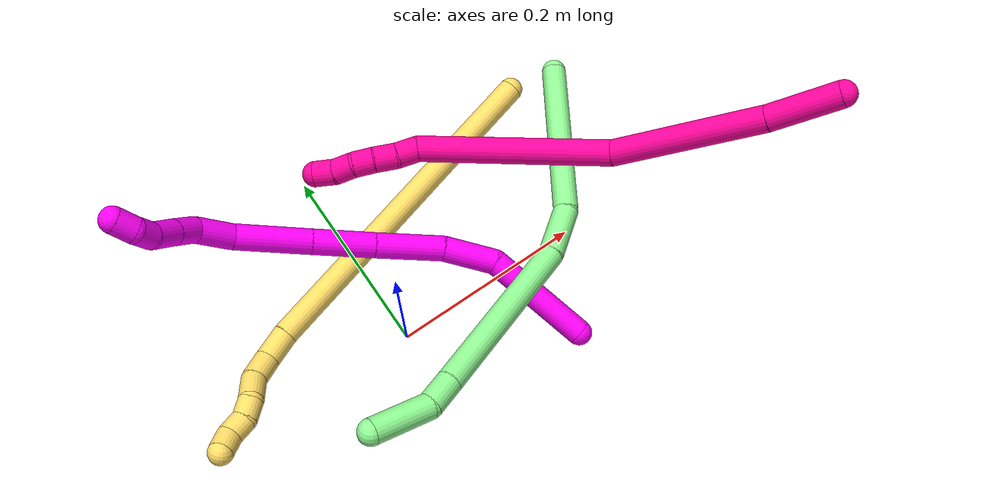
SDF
<sdf version="1.7">
 <world name="default">
  <model name="5">
   <static>0</static>
   <link name="5">
    <collision name="collision-cylinder-e_1_1_4">
     <pose>-0.120604 -0.069221 -0.108731 2.57468 -0.752177 -1.87044</pose>
     <geometry><cylinder><radius>0.0125</radius><length>0.353039</length></cylinder></geometry>
     <surface>
      <friction><ode><mu>1.16</mu><mu2>1.16</mu2><slip1>0</slip1><slip2>0</slip2></ode></friction>
      <contact><ode><kp>1e+06</kp><kd>1</kd><max_vel>0</max_vel><min_depth>0.001</min_depth></ode></contact>
     </surface>
    </collision>
    <visual name="visual-cylinder-e_1_1_4">
     <pose>-0.120604 -0.069221 -0.108731 2.57468 -0.752177 -1.87044</pose>
     <geometry><cylinder><radius>0.0125</radius><length>0.353039</length></cylinder></geometry>
     <material><ambient>1 0.858824 0.4 1</ambient></material>
    </visual>
    <collision name="collision-cylinder-e_2_4_5">
     <pose>-0.250256 -0.145871 -0.227094 2.4846 -0.639587 -1.54197</pose>
     <geometry><cylinder><radius>0.0125</radius><length>0.03032</length></cylinder></geometry>
     <surface>
      <friction><ode><mu>1.16</mu><mu2>1.16</mu2><slip1>0</slip1><slip2>0</slip2></ode></friction>
      <contact><ode><kp>1e+06</kp><kd>1</kd><max_vel>0</max_vel><min_depth>0.001</min_depth></ode></contact>
     </surface>
    </collision>
    <visual name="visual-cylinder-e_2_4_5">
     <pose>-0.250256 -0.145871 -0.227094 2.4846 -0.639587 -1.54197</pose>
     <geometry><cylinder><radius>0.0125</radius><length>0.03032</length></cylinder></geometry>
     <material><ambient>1 0.858824 0.4 1</ambient></material>
    </visual>
    <collision name="collision-cylinder-e_3_5_6">
     <pose>-0.267143 -0.16355 -0.241167 1.97974 -0.611863 -0.896844</pose>
     <geometry><cylinder><radius>0.0125</radius><length>0.027296</length></cylinder></geometry>
     <surface>
      <friction><ode><mu>1.16</mu><mu2>1.16</mu2><slip1>0</slip1><slip2>0</slip2></ode></friction>
      <contact><ode><kp>1e+06</kp><kd>1</kd><max_vel>0</max_vel><min_depth>0.001</min_depth></ode></contact>
     </surface>
    </collision>
    <visual name="visual-cylinder-e_3_5_6">
     <pose>-0.267143 -0.16355 -0.241167 1.97974 -0.611863 -0.896844</pose>
     <geometry><cylinder><radius>0.0125</radius><length>0.027296</length></cylinder></geometry>
     <material><ambient>1 0.858824 0.4 1</ambient></material>
    </visual>
    <collision name="collision-cylinder-e_4_6_7">
     <pose>-0.278303 -0.186961 -0.248413 1.78071 -0.241916 -0.298124</pose>
     <geometry><cylinder><radius>0.0125</radius><length>0.027718</length></cylinder></geometry>
     <surface>
      <friction><ode><mu>1.16</mu><mu2>1.16</mu2><slip1>0</slip1><slip2>0</slip2></ode></friction>
      <contact><ode><kp>1e+06</kp><kd>1</kd><max_vel>0</max_vel><min_depth>0.001</min_depth></ode></contact>
     </surface>
    </collision>
    <visual name="visual-cylinder-e_4_6_7">
     <pose>-0.278303 -0.186961 -0.248413 1.78071 -0.241916 -0.298124</pose>
     <geometry><cylinder><radius>0.0125</radius><length>0.027718</length></cylinder></geometry>
     <material><ambient>1 0.858824 0.4 1</ambient></material>
    </visual>
    <collision name="collision-cylinder-e_5_7_8">
     <pose>-0.285364 -0.20773 -0.256648 2.19066 -0.380727 -0.71626</pose>
     <geometry><cylinder><radius>0.0125</radius><length>0.020138</length></cylinder></geometry>
     <surface>
      <friction><ode><mu>1.16</mu><mu2>1.16</mu2><slip1>0</slip1><slip2>0</slip2></ode></friction>
      <contact><ode><kp>1e+06</kp><kd>1</kd><max_vel>0</max_vel><min_depth>0.001</min_depth></ode></contact>
     </surface>
    </collision>
    <visual name="visual-cylinder-e_5_7_8">
     <pose>-0.285364 -0.20773 -0.256648 2.19066 -0.380727 -0.71626</pose>
     <geometry><cylinder><radius>0.0125</radius><length>0.020138</length></cylinder></geometry>
     <material><ambient>1 0.858824 0.4 1</ambient></material>
    </visual>
    <collision name="collision-cylinder-e_6_8_9">
     <pose>-0.296303 -0.220865 -0.266797 2.27757 -0.780606 -1.4571</pose>
     <geometry><cylinder><radius>0.0125</radius><length>0.020455</length></cylinder></geometry>
     <surface>
      <friction><ode><mu>1.16</mu><mu2>1.16</mu2><slip1>0</slip1><slip2>0</slip2></ode></friction>
      <contact><ode><kp>1e+06</kp><kd>1</kd><max_vel>0</max_vel><min_depth>0.001</min_depth></ode></contact>
     </surface>
    </collision>
    <visual name="visual-cylinder-e_6_8_9">
     <pose>-0.296303 -0.220865 -0.266797 2.27757 -0.780606 -1.4571</pose>
     <geometry><cylinder><radius>0.0125</radius><length>0.020455</length></cylinder></geometry>
     <material><ambient>1 0.858824 0.4 1</ambient></material>
    </visual>
    <collision name="collision-cylinder-e_7_9_2">
     <pose>-0.308627 -0.235178 -0.27418 1.86524 -0.509227 -0.674941</pose>
     <geometry><cylinder><radius>0.0125</radius><length>0.021034</length></cylinder></geometry>
     <surface>
      <friction><ode><mu>1.16</mu><mu2>1.16</mu2><slip1>0</slip1><slip2>0</slip2></ode></friction>
      <contact><ode><kp>1e+06</kp><kd>1</kd><max_vel>0</max_vel><min_depth>0.001</min_depth></ode></contact>
     </surface>
    </collision>
    <visual name="visual-cylinder-e_7_9_2">
     <pose>-0.308627 -0.235178 -0.27418 1.86524 -0.509227 -0.674941</pose>
     <geometry><cylinder><radius>0.0125</radius><length>0.021034</length></cylinder></geometry>
     <material><ambient>1 0.858824 0.4 1</ambient></material>
    </visual>
    <collision name="collision-sphere-2">
     <pose>-0.313754 -0.243966 -0.276845 0 -0 0</pose>
     <geometry><sphere><radius>0.0125</radius></sphere></geometry>
     <surface>
      <friction><ode><mu>1.16</mu><mu2>1.16</mu2><slip1>0</slip1><slip2>0</slip2></ode></friction>
      <contact><ode><kp>1e+06</kp><kd>1</kd><max_vel>0</max_vel><min_depth>0.001</min_depth></ode></contact>
     </surface>
    </collision>
    <visual name="visual-sphere-2">
     <pose>-0.313754 -0.243966 -0.276845 0 -0 0</pose>
     <geometry><sphere><radius>0.0125</radius></sphere></geometry>
     <material><ambient>1 0.858824 0.4 1</ambient></material>
    </visual>
    <collision name="collision-sphere-9">
     <pose>-0.3035 -0.226391 -0.271515 0 -0 0</pose>
     <geometry><sphere><radius>0.0125</radius></sphere></geometry>
     <surface>
      <friction><ode><mu>1.16</mu><mu2>1.16</mu2><slip1>0</slip1><slip2>0</slip2></ode></friction>
      <contact><ode><kp>1e+06</kp><kd>1</kd><max_vel>0</max_vel><min_depth>0.001</min_depth></ode></contact>
     </surface>
    </collision>
    <visual name="visual-sphere-9">
     <pose>-0.3035 -0.226391 -0.271515 0 -0 0</pose>
     <geometry><sphere><radius>0.0125</radius></sphere></geometry>
     <material><ambient>1 0.858824 0.4 1</ambient></material>
    </visual>
    <collision name="collision-sphere-4">
     <pose>-0.241207 -0.138442 -0.217462 0 -0 0</pose>
     <geometry><sphere><radius>0.0125</radius></sphere></geometry>
     <surface>
      <friction><ode><mu>1.16</mu><mu2>1.16</mu2><slip1>0</slip1><slip2>0</slip2></ode></friction>
      <contact><ode><kp>1e+06</kp><kd>1</kd><max_vel>0</max_vel><min_depth>0.001</min_depth></ode></contact>
     </surface>
    </collision>
    <visual name="visual-sphere-4">
     <pose>-0.241207 -0.138442 -0.217462 0 -0 0</pose>
     <geometry><sphere><radius>0.0125</radius></sphere></geometry>
     <material><ambient>1 0.858824 0.4 1</ambient></material>
    </visual>
    <collision name="collision-sphere-1">
     <geometry><sphere><radius>0.0125</radius></sphere></geometry>
     <surface>
      <friction><ode><mu>1.16</mu><mu2>1.16</mu2><slip1>0</slip1><slip2>0</slip2></ode></friction>
      <contact><ode><kp>1e+06</kp><kd>1</kd><max_vel>0</max_vel><min_depth>0.001</min_depth></ode></contact>
     </surface>
    </collision>
    <visual name="visual-sphere-1">
     <geometry><sphere><radius>0.0125</radius></sphere></geometry>
     <material><ambient>1 0.858824 0.4 1</ambient></material>
    </visual>
    <collision name="collision-sphere-8">
     <pose>-0.289106 -0.215339 -0.262078 0 -0 0</pose>
     <geometry><sphere><radius>0.0125</radius></sphere></geometry>
     <surface>
      <friction><ode><mu>1.16</mu><mu2>1.16</mu2><slip1>0</slip1><slip2>0</slip2></ode></friction>
      <contact><ode><kp>1e+06</kp><kd>1</kd><max_vel>0</max_vel><min_depth>0.001</min_depth></ode></contact>
     </surface>
    </collision>
    <visual name="visual-sphere-8">
     <pose>-0.289106 -0.215339 -0.262078 0 -0 0</pose>
     <geometry><sphere><radius>0.0125</radius></sphere></geometry>
     <material><ambient>1 0.858824 0.4 1</ambient></material>
    </visual>
    <collision name="collision-sphere-5">
     <pose>-0.259304 -0.1533 -0.236725 0 -0 0</pose>
     <geometry><sphere><radius>0.0125</radius></sphere></geometry>
     <surface>
      <friction><ode><mu>1.16</mu><mu2>1.16</mu2><slip1>0</slip1><slip2>0</slip2></ode></friction>
      <contact><ode><kp>1e+06</kp><kd>1</kd><max_vel>0</max_vel><min_depth>0.001</min_depth></ode></contact>
     </surface>
    </collision>
    <visual name="visual-sphere-5">
     <pose>-0.259304 -0.1533 -0.236725 0 -0 0</pose>
     <geometry><sphere><radius>0.0125</radius></sphere></geometry>
     <material><ambient>1 0.858824 0.4 1</ambient></material>
    </visual>
    <collision name="collision-sphere-6">
     <pose>-0.274982 -0.173801 -0.24561 0 -0 0</pose>
     <geometry><sphere><radius>0.0125</radius></sphere></geometry>
     <surface>
      <friction><ode><mu>1.16</mu><mu2>1.16</mu2><slip1>0</slip1><slip2>0</slip2></ode></friction>
      <contact><ode><kp>1e+06</kp><kd>1</kd><max_vel>0</max_vel><min_depth>0.001</min_depth></ode></contact>
     </surface>
    </collision>
    <visual name="visual-sphere-6">
     <pose>-0.274982 -0.173801 -0.24561 0 -0 0</pose>
     <geometry><sphere><radius>0.0125</radius></sphere></geometry>
     <material><ambient>1 0.858824 0.4 1</ambient></material>
    </visual>
    <collision name="collision-sphere-7">
     <pose>-0.281623 -0.200122 -0.251217 0 -0 0</pose>
     <geometry><sphere><radius>0.0125</radius></sphere></geometry>
     <surface>
      <friction><ode><mu>1.16</mu><mu2>1.16</mu2><slip1>0</slip1><slip2>0</slip2></ode></friction>
      <contact><ode><kp>1e+06</kp><kd>1</kd><max_vel>0</max_vel><min_depth>0.001</min_depth></ode></contact>
     </surface>
    </collision>
    <visual name="visual-sphere-7">
     <pose>-0.281623 -0.200122 -0.251217 0 -0 0</pose>
     <geometry><sphere><radius>0.0125</radius></sphere></geometry>
     <material><ambient>1 0.858824 0.4 1</ambient></material>
    </visual>
    <inertial>
     <pose>-0.166941 -0.10431 -0.150266 0 -0 0</pose>
     <mass>0.5</mass>
     <inertia>
      <ixx>-0.003388</ixx>
      <ixy>0</ixy>
      <ixz>0</ixz>
      <iyy>-0.000387</iyy>
      <iyz>0</iyz>
      <izz>0.003953</izz>
     </inertia>
    </inertial>
   </link>
   <pose>0.23608 0.154565 0.037338 -0.727473 0.361771 -0.499266</pose>
  </model>
  <model name="10">
   <static>0</static>
   <link name="10">
    <collision name="collision-cylinder-e_1_1_4">
     <pose>-0.011371 0.049374 -0.018046 -1.9212 -0.213018 0.303462</pose>
     <geometry><cylinder><radius>0.0125</radius><length>0.107568</length></cylinder></geometry>
     <surface>
      <friction><ode><mu>1.16</mu><mu2>1.16</mu2><slip1>0</slip1><slip2>0</slip2></ode></friction>
      <contact><ode><kp>1e+06</kp><kd>1</kd><max_vel>0</max_vel><min_depth>0.001</min_depth></ode></contact>
     </surface>
    </collision>
    <visual name="visual-cylinder-e_1_1_4">
     <pose>-0.011371 0.049374 -0.018046 -1.9212 -0.213018 0.303462</pose>
     <geometry><cylinder><radius>0.0125</radius><length>0.107568</length></cylinder></geometry>
     <material><ambient>1 0 0.964706 1</ambient></material>
    </visual>
    <collision name="collision-cylinder-e_2_4_5">
     <pose>-0.038804 0.117267 -0.045794 -2.05343 -0.655119 1.02351</pose>
     <geometry><cylinder><radius>0.0125</radius><length>0.05273</length></cylinder></geometry>
     <surface>
      <friction><ode><mu>1.16</mu><mu2>1.16</mu2><slip1>0</slip1><slip2>0</slip2></ode></friction>
      <contact><ode><kp>1e+06</kp><kd>1</kd><max_vel>0</max_vel><min_depth>0.001</min_depth></ode></contact>
     </surface>
    </collision>
    <visual name="visual-cylinder-e_2_4_5">
     <pose>-0.038804 0.117267 -0.045794 -2.05343 -0.655119 1.02351</pose>
     <geometry><cylinder><radius>0.0125</radius><length>0.05273</length></cylinder></geometry>
     <material><ambient>1 0 0.964706 1</ambient></material>
    </visual>
    <collision name="collision-cylinder-e_3_5_6">
     <pose>-0.0808 0.154538 -0.065947 -2.0792 -0.879333 1.35022</pose>
     <geometry><cylinder><radius>0.0125</radius><length>0.067331</length></cylinder></geometry>
     <surface>
      <friction><ode><mu>1.16</mu><mu2>1.16</mu2><slip1>0</slip1><slip2>0</slip2></ode></friction>
      <contact><ode><kp>1e+06</kp><kd>1</kd><max_vel>0</max_vel><min_depth>0.001</min_depth></ode></contact>
     </surface>
    </collision>
    <visual name="visual-cylinder-e_3_5_6">
     <pose>-0.0808 0.154538 -0.065947 -2.0792 -0.879333 1.35022</pose>
     <geometry><cylinder><radius>0.0125</radius><length>0.067331</length></cylinder></geometry>
     <material><ambient>1 0 0.964706 1</ambient></material>
    </visual>
    <collision name="collision-cylinder-e_4_6_7">
     <pose>-0.130081 0.190473 -0.085504 -2.05816 -0.876304 1.32309</pose>
     <geometry><cylinder><radius>0.0125</radius><length>0.060773</length></cylinder></geometry>
     <surface>
      <friction><ode><mu>1.16</mu><mu2>1.16</mu2><slip1>0</slip1><slip2>0</slip2></ode></friction>
      <contact><ode><kp>1e+06</kp><kd>1</kd><max_vel>0</max_vel><min_depth>0.001</min_depth></ode></contact>
     </surface>
    </collision>
    <visual name="visual-cylinder-e_4_6_7">
     <pose>-0.130081 0.190473 -0.085504 -2.05816 -0.876304 1.32309</pose>
     <geometry><cylinder><radius>0.0125</radius><length>0.060773</length></cylinder></geometry>
     <material><ambient>1 0 0.964706 1</ambient></material>
    </visual>
    <collision name="collision-cylinder-e_5_7_8">
     <pose>-0.182273 0.228946 -0.104001 -1.98614 -0.891971 1.26557</pose>
     <geometry><cylinder><radius>0.0125</radius><length>0.074119</length></cylinder></geometry>
     <surface>
      <friction><ode><mu>1.16</mu><mu2>1.16</mu2><slip1>0</slip1><slip2>0</slip2></ode></friction>
      <contact><ode><kp>1e+06</kp><kd>1</kd><max_vel>0</max_vel><min_depth>0.001</min_depth></ode></contact>
     </surface>
    </collision>
    <visual name="visual-cylinder-e_5_7_8">
     <pose>-0.182273 0.228946 -0.104001 -1.98614 -0.891971 1.26557</pose>
     <geometry><cylinder><radius>0.0125</radius><length>0.074119</length></cylinder></geometry>
     <material><ambient>1 0 0.964706 1</ambient></material>
    </visual>
    <collision name="collision-cylinder-e_6_8_9">
     <pose>-0.225583 0.262695 -0.111889 -1.45094 -0.856266 0.769099</pose>
     <geometry><cylinder><radius>0.0125</radius><length>0.0383</length></cylinder></geometry>
     <surface>
      <friction><ode><mu>1.16</mu><mu2>1.16</mu2><slip1>0</slip1><slip2>0</slip2></ode></friction>
      <contact><ode><kp>1e+06</kp><kd>1</kd><max_vel>0</max_vel><min_depth>0.001</min_depth></ode></contact>
     </surface>
    </collision>
    <visual name="visual-cylinder-e_6_8_9">
     <pose>-0.225583 0.262695 -0.111889 -1.45094 -0.856266 0.769099</pose>
     <geometry><cylinder><radius>0.0125</radius><length>0.0383</length></cylinder></geometry>
     <material><ambient>1 0 0.964706 1</ambient></material>
    </visual>
    <collision name="collision-cylinder-e_7_9_10">
     <pose>-0.25147 0.279936 -0.103495 -0.606513 -0.937182 0.314175</pose>
     <geometry><cylinder><radius>0.0125</radius><length>0.028342</length></cylinder></geometry>
     <surface>
      <friction><ode><mu>1.16</mu><mu2>1.16</mu2><slip1>0</slip1><slip2>0</slip2></ode></friction>
      <contact><ode><kp>1e+06</kp><kd>1</kd><max_vel>0</max_vel><min_depth>0.001</min_depth></ode></contact>
     </surface>
    </collision>
    <visual name="visual-cylinder-e_7_9_10">
     <pose>-0.25147 0.279936 -0.103495 -0.606513 -0.937182 0.314175</pose>
     <geometry><cylinder><radius>0.0125</radius><length>0.028342</length></cylinder></geometry>
     <material><ambient>1 0 0.964706 1</ambient></material>
    </visual>
    <collision name="collision-cylinder-e_8_10_11">
     <pose>-0.274517 0.289198 -0.08887 -0.525074 -0.91555 0.263274</pose>
     <geometry><cylinder><radius>0.0125</radius><length>0.029327</length></cylinder></geometry>
     <surface>
      <friction><ode><mu>1.16</mu><mu2>1.16</mu2><slip1>0</slip1><slip2>0</slip2></ode></friction>
      <contact><ode><kp>1e+06</kp><kd>1</kd><max_vel>0</max_vel><min_depth>0.001</min_depth></ode></contact>
     </surface>
    </collision>
    <visual name="visual-cylinder-e_8_10_11">
     <pose>-0.274517 0.289198 -0.08887 -0.525074 -0.91555 0.263274</pose>
     <geometry><cylinder><radius>0.0125</radius><length>0.029327</length></cylinder></geometry>
     <material><ambient>1 0 0.964706 1</ambient></material>
    </visual>
    <collision name="collision-cylinder-e_9_11_12">
     <pose>-0.292499 0.299954 -0.076066 -0.891133 -0.667091 0.327995</pose>
     <geometry><cylinder><radius>0.0125</radius><length>0.020544</length></cylinder></geometry>
     <surface>
      <friction><ode><mu>1.16</mu><mu2>1.16</mu2><slip1>0</slip1><slip2>0</slip2></ode></friction>
      <contact><ode><kp>1e+06</kp><kd>1</kd><max_vel>0</max_vel><min_depth>0.001</min_depth></ode></contact>
     </surface>
    </collision>
    <visual name="visual-cylinder-e_9_11_12">
     <pose>-0.292499 0.299954 -0.076066 -0.891133 -0.667091 0.327995</pose>
     <geometry><cylinder><radius>0.0125</radius><length>0.020544</length></cylinder></geometry>
     <material><ambient>1 0 0.964706 1</ambient></material>
    </visual>
    <collision name="collision-cylinder-e_10_12_2">
     <pose>-0.304702 0.314912 -0.070427 -1.5056 -0.5918 0.556381</pose>
     <geometry><cylinder><radius>0.0125</radius><length>0.020964</length></cylinder></geometry>
     <surface>
      <friction><ode><mu>1.16</mu><mu2>1.16</mu2><slip1>0</slip1><slip2>0</slip2></ode></friction>
      <contact><ode><kp>1e+06</kp><kd>1</kd><max_vel>0</max_vel><min_depth>0.001</min_depth></ode></contact>
     </surface>
    </collision>
    <visual name="visual-cylinder-e_10_12_2">
     <pose>-0.304702 0.314912 -0.070427 -1.5056 -0.5918 0.556381</pose>
     <geometry><cylinder><radius>0.0125</radius><length>0.020964</length></cylinder></geometry>
     <material><ambient>1 0 0.964706 1</ambient></material>
    </visual>
    <collision name="collision-sphere-2">
     <pose>-0.31055 0.323593 -0.06986 0 -0 0</pose>
     <geometry><sphere><radius>0.0125</radius></sphere></geometry>
     <surface>
      <friction><ode><mu>1.16</mu><mu2>1.16</mu2><slip1>0</slip1><slip2>0</slip2></ode></friction>
      <contact><ode><kp>1e+06</kp><kd>1</kd><max_vel>0</max_vel><min_depth>0.001</min_depth></ode></contact>
     </surface>
    </collision>
    <visual name="visual-sphere-2">
     <pose>-0.31055 0.323593 -0.06986 0 -0 0</pose>
     <geometry><sphere><radius>0.0125</radius></sphere></geometry>
     <material><ambient>1 0 0.964706 1</ambient></material>
    </visual>
    <collision name="collision-sphere-12">
     <pose>-0.298855 0.30623 -0.070993 0 -0 0</pose>
     <geometry><sphere><radius>0.0125</radius></sphere></geometry>
     <surface>
      <friction><ode><mu>1.16</mu><mu2>1.16</mu2><slip1>0</slip1><slip2>0</slip2></ode></friction>
      <contact><ode><kp>1e+06</kp><kd>1</kd><max_vel>0</max_vel><min_depth>0.001</min_depth></ode></contact>
     </surface>
    </collision>
    <visual name="visual-sphere-12">
     <pose>-0.298855 0.30623 -0.070993 0 -0 0</pose>
     <geometry><sphere><radius>0.0125</radius></sphere></geometry>
     <material><ambient>1 0 0.964706 1</ambient></material>
    </visual>
    <collision name="collision-sphere-11">
     <pose>-0.286144 0.293677 -0.081138 0 -0 0</pose>
     <geometry><sphere><radius>0.0125</radius></sphere></geometry>
     <surface>
      <friction><ode><mu>1.16</mu><mu2>1.16</mu2><slip1>0</slip1><slip2>0</slip2></ode></friction>
      <contact><ode><kp>1e+06</kp><kd>1</kd><max_vel>0</max_vel><min_depth>0.001</min_depth></ode></contact>
     </surface>
    </collision>
    <visual name="visual-sphere-11">
     <pose>-0.286144 0.293677 -0.081138 0 -0 0</pose>
     <geometry><sphere><radius>0.0125</radius></sphere></geometry>
     <material><ambient>1 0 0.964706 1</ambient></material>
    </visual>
    <collision name="collision-sphere-10">
     <pose>-0.26289 0.284719 -0.096601 0 -0 0</pose>
     <geometry><sphere><radius>0.0125</radius></sphere></geometry>
     <surface>
      <friction><ode><mu>1.16</mu><mu2>1.16</mu2><slip1>0</slip1><slip2>0</slip2></ode></friction>
      <contact><ode><kp>1e+06</kp><kd>1</kd><max_vel>0</max_vel><min_depth>0.001</min_depth></ode></contact>
     </surface>
    </collision>
    <visual name="visual-sphere-10">
     <pose>-0.26289 0.284719 -0.096601 0 -0 0</pose>
     <geometry><sphere><radius>0.0125</radius></sphere></geometry>
     <material><ambient>1 0 0.964706 1</ambient></material>
    </visual>
    <collision name="collision-sphere-9">
     <pose>-0.240049 0.275154 -0.110389 0 -0 0</pose>
     <geometry><sphere><radius>0.0125</radius></sphere></geometry>
     <surface>
      <friction><ode><mu>1.16</mu><mu2>1.16</mu2><slip1>0</slip1><slip2>0</slip2></ode></friction>
      <contact><ode><kp>1e+06</kp><kd>1</kd><max_vel>0</max_vel><min_depth>0.001</min_depth></ode></contact>
     </surface>
    </collision>
    <visual name="visual-sphere-9">
     <pose>-0.240049 0.275154 -0.110389 0 -0 0</pose>
     <geometry><sphere><radius>0.0125</radius></sphere></geometry>
     <material><ambient>1 0 0.964706 1</ambient></material>
    </visual>
    <collision name="collision-sphere-4">
     <pose>-0.022741 0.098748 -0.036091 0 -0 0</pose>
     <geometry><sphere><radius>0.0125</radius></sphere></geometry>
     <surface>
      <friction><ode><mu>1.16</mu><mu2>1.16</mu2><slip1>0</slip1><slip2>0</slip2></ode></friction>
      <contact><ode><kp>1e+06</kp><kd>1</kd><max_vel>0</max_vel><min_depth>0.001</min_depth></ode></contact>
     </surface>
    </collision>
    <visual name="visual-sphere-4">
     <pose>-0.022741 0.098748 -0.036091 0 -0 0</pose>
     <geometry><sphere><radius>0.0125</radius></sphere></geometry>
     <material><ambient>1 0 0.964706 1</ambient></material>
    </visual>
    <collision name="collision-sphere-1">
     <geometry><sphere><radius>0.0125</radius></sphere></geometry>
     <surface>
      <friction><ode><mu>1.16</mu><mu2>1.16</mu2><slip1>0</slip1><slip2>0</slip2></ode></friction>
      <contact><ode><kp>1e+06</kp><kd>1</kd><max_vel>0</max_vel><min_depth>0.001</min_depth></ode></contact>
     </surface>
    </collision>
    <visual name="visual-sphere-1">
     <geometry><sphere><radius>0.0125</radius></sphere></geometry>
     <material><ambient>1 0 0.964706 1</ambient></material>
    </visual>
    <collision name="collision-sphere-8">
     <pose>-0.211117 0.250237 -0.11339 0 -0 0</pose>
     <geometry><sphere><radius>0.0125</radius></sphere></geometry>
     <surface>
      <friction><ode><mu>1.16</mu><mu2>1.16</mu2><slip1>0</slip1><slip2>0</slip2></ode></friction>
      <contact><ode><kp>1e+06</kp><kd>1</kd><max_vel>0</max_vel><min_depth>0.001</min_depth></ode></contact>
     </surface>
    </collision>
    <visual name="visual-sphere-8">
     <pose>-0.211117 0.250237 -0.11339 0 -0 0</pose>
     <geometry><sphere><radius>0.0125</radius></sphere></geometry>
     <material><ambient>1 0 0.964706 1</ambient></material>
    </visual>
    <collision name="collision-sphere-5">
     <pose>-0.054867 0.135785 -0.055497 0 -0 0</pose>
     <geometry><sphere><radius>0.0125</radius></sphere></geometry>
     <surface>
      <friction><ode><mu>1.16</mu><mu2>1.16</mu2><slip1>0</slip1><slip2>0</slip2></ode></friction>
      <contact><ode><kp>1e+06</kp><kd>1</kd><max_vel>0</max_vel><min_depth>0.001</min_depth></ode></contact>
     </surface>
    </collision>
    <visual name="visual-sphere-5">
     <pose>-0.054867 0.135785 -0.055497 0 -0 0</pose>
     <geometry><sphere><radius>0.0125</radius></sphere></geometry>
     <material><ambient>1 0 0.964706 1</ambient></material>
    </visual>
    <collision name="collision-sphere-6">
     <pose>-0.106733 0.17329 -0.076397 0 -0 0</pose>
     <geometry><sphere><radius>0.0125</radius></sphere></geometry>
     <surface>
      <friction><ode><mu>1.16</mu><mu2>1.16</mu2><slip1>0</slip1><slip2>0</slip2></ode></friction>
      <contact><ode><kp>1e+06</kp><kd>1</kd><max_vel>0</max_vel><min_depth>0.001</min_depth></ode></contact>
     </surface>
    </collision>
    <visual name="visual-sphere-6">
     <pose>-0.106733 0.17329 -0.076397 0 -0 0</pose>
     <geometry><sphere><radius>0.0125</radius></sphere></geometry>
     <material><ambient>1 0 0.964706 1</ambient></material>
    </visual>
    <collision name="collision-sphere-7">
     <pose>-0.153429 0.207656 -0.094612 0 -0 0</pose>
     <geometry><sphere><radius>0.0125</radius></sphere></geometry>
     <surface>
      <friction><ode><mu>1.16</mu><mu2>1.16</mu2><slip1>0</slip1><slip2>0</slip2></ode></friction>
      <contact><ode><kp>1e+06</kp><kd>1</kd><max_vel>0</max_vel><min_depth>0.001</min_depth></ode></contact>
     </surface>
    </collision>
    <visual name="visual-sphere-7">
     <pose>-0.153429 0.207656 -0.094612 0 -0 0</pose>
     <geometry><sphere><radius>0.0125</radius></sphere></geometry>
     <material><ambient>1 0 0.964706 1</ambient></material>
    </visual>
    <inertial>
     <pose>-0.13268 0.179371 -0.06913 0 -0 0</pose>
     <mass>0.5</mass>
     <inertia>
      <ixx>0.000204</ixx>
      <ixy>0</ixy>
      <ixz>0</ixz>
      <iyy>0.000157</iyy>
      <iyz>0</iyz>
      <izz>-6.2e-05</izz>
     </inertia>
    </inertial>
   </link>
   <pose>0.135499 -0.106337 0.061968 0.512331 0.29728 0.138403</pose>
  </model>
  <model name="13">
   <static>0</static>
   <link name="13">
    <collision name="collision-cylinder-e_1_1_4">
     <pose>-0.041466 -0.074191 -0.023837 1.88167 -0.489007 -0.65945</pose>
     <geometry><cylinder><radius>0.0125</radius><length>0.176543</length></cylinder></geometry>
     <surface>
      <friction><ode><mu>1.16</mu><mu2>1.16</mu2><slip1>0</slip1><slip2>0</slip2></ode></friction>
      <contact><ode><kp>1e+06</kp><kd>1</kd><max_vel>0</max_vel><min_depth>0.001</min_depth></ode></contact>
     </surface>
    </collision>
    <visual name="visual-cylinder-e_1_1_4">
     <pose>-0.041466 -0.074191 -0.023837 1.88167 -0.489007 -0.65945</pose>
     <geometry><cylinder><radius>0.0125</radius><length>0.176543</length></cylinder></geometry>
     <material><ambient>0.564706 0.984314 0.572549 1</ambient></material>
    </visual>
    <collision name="collision-cylinder-e_2_4_5">
     <pose>-0.102942 -0.165327 -0.054307 1.94389 -0.832859 -1.15008</pose>
     <geometry><cylinder><radius>0.0125</radius><length>0.054095</length></cylinder></geometry>
     <surface>
      <friction><ode><mu>1.16</mu><mu2>1.16</mu2><slip1>0</slip1><slip2>0</slip2></ode></friction>
      <contact><ode><kp>1e+06</kp><kd>1</kd><max_vel>0</max_vel><min_depth>0.001</min_depth></ode></contact>
     </surface>
    </collision>
    <visual name="visual-cylinder-e_2_4_5">
     <pose>-0.102942 -0.165327 -0.054307 1.94389 -0.832859 -1.15008</pose>
     <geometry><cylinder><radius>0.0125</radius><length>0.054095</length></cylinder></geometry>
     <material><ambient>0.564706 0.984314 0.572549 1</ambient></material>
    </visual>
    <collision name="collision-cylinder-e_3_5_6">
     <pose>-0.202797 -0.219682 -0.07151 1.84619 -1.11768 -1.38141</pose>
     <geometry><cylinder><radius>0.0125</radius><length>0.177609</length></cylinder></geometry>
     <surface>
      <friction><ode><mu>1.16</mu><mu2>1.16</mu2><slip1>0</slip1><slip2>0</slip2></ode></friction>
      <contact><ode><kp>1e+06</kp><kd>1</kd><max_vel>0</max_vel><min_depth>0.001</min_depth></ode></contact>
     </surface>
    </collision>
    <visual name="visual-cylinder-e_3_5_6">
     <pose>-0.202797 -0.219682 -0.07151 1.84619 -1.11768 -1.38141</pose>
     <geometry><cylinder><radius>0.0125</radius><length>0.177609</length></cylinder></geometry>
     <material><ambient>0.564706 0.984314 0.572549 1</ambient></material>
    </visual>
    <collision name="collision-cylinder-e_4_6_7">
     <pose>-0.296741 -0.263737 -0.083534 1.78607 -1.12138 -1.32491</pose>
     <geometry><cylinder><radius>0.0125</radius><length>0.031312</length></cylinder></geometry>
     <surface>
      <friction><ode><mu>1.16</mu><mu2>1.16</mu2><slip1>0</slip1><slip2>0</slip2></ode></friction>
      <contact><ode><kp>1e+06</kp><kd>1</kd><max_vel>0</max_vel><min_depth>0.001</min_depth></ode></contact>
     </surface>
    </collision>
    <visual name="visual-cylinder-e_4_6_7">
     <pose>-0.296741 -0.263737 -0.083534 1.78607 -1.12138 -1.32491</pose>
     <geometry><cylinder><radius>0.0125</radius><length>0.031312</length></cylinder></geometry>
     <material><ambient>0.564706 0.984314 0.572549 1</ambient></material>
    </visual>
    <collision name="collision-cylinder-e_5_7_2">
     <pose>-0.340958 -0.271781 -0.082898 0.5902 -1.48748 -0.545367</pose>
     <geometry><cylinder><radius>0.0125</radius><length>0.060441</length></cylinder></geometry>
     <surface>
      <friction><ode><mu>1.16</mu><mu2>1.16</mu2><slip1>0</slip1><slip2>0</slip2></ode></friction>
      <contact><ode><kp>1e+06</kp><kd>1</kd><max_vel>0</max_vel><min_depth>0.001</min_depth></ode></contact>
     </surface>
    </collision>
    <visual name="visual-cylinder-e_5_7_2">
     <pose>-0.340958 -0.271781 -0.082898 0.5902 -1.48748 -0.545367</pose>
     <geometry><cylinder><radius>0.0125</radius><length>0.060441</length></cylinder></geometry>
     <material><ambient>0.564706 0.984314 0.572549 1</ambient></material>
    </visual>
    <collision name="collision-sphere-2">
     <pose>-0.371074 -0.273181 -0.080808 0 -0 0</pose>
     <geometry><sphere><radius>0.0125</radius></sphere></geometry>
     <surface>
      <friction><ode><mu>1.16</mu><mu2>1.16</mu2><slip1>0</slip1><slip2>0</slip2></ode></friction>
      <contact><ode><kp>1e+06</kp><kd>1</kd><max_vel>0</max_vel><min_depth>0.001</min_depth></ode></contact>
     </surface>
    </collision>
    <visual name="visual-sphere-2">
     <pose>-0.371074 -0.273181 -0.080808 0 -0 0</pose>
     <geometry><sphere><radius>0.0125</radius></sphere></geometry>
     <material><ambient>0.564706 0.984314 0.572549 1</ambient></material>
    </visual>
    <collision name="collision-sphere-7">
     <pose>-0.310842 -0.270382 -0.084987 0 -0 0</pose>
     <geometry><sphere><radius>0.0125</radius></sphere></geometry>
     <surface>
      <friction><ode><mu>1.16</mu><mu2>1.16</mu2><slip1>0</slip1><slip2>0</slip2></ode></friction>
      <contact><ode><kp>1e+06</kp><kd>1</kd><max_vel>0</max_vel><min_depth>0.001</min_depth></ode></contact>
     </surface>
    </collision>
    <visual name="visual-sphere-7">
     <pose>-0.310842 -0.270382 -0.084987 0 -0 0</pose>
     <geometry><sphere><radius>0.0125</radius></sphere></geometry>
     <material><ambient>0.564706 0.984314 0.572549 1</ambient></material>
    </visual>
    <collision name="collision-sphere-6">
     <pose>-0.28264 -0.257093 -0.082082 0 -0 0</pose>
     <geometry><sphere><radius>0.0125</radius></sphere></geometry>
     <surface>
      <friction><ode><mu>1.16</mu><mu2>1.16</mu2><slip1>0</slip1><slip2>0</slip2></ode></friction>
      <contact><ode><kp>1e+06</kp><kd>1</kd><max_vel>0</max_vel><min_depth>0.001</min_depth></ode></contact>
     </surface>
    </collision>
    <visual name="visual-sphere-6">
     <pose>-0.28264 -0.257093 -0.082082 0 -0 0</pose>
     <geometry><sphere><radius>0.0125</radius></sphere></geometry>
     <material><ambient>0.564706 0.984314 0.572549 1</ambient></material>
    </visual>
    <collision name="collision-sphere-5">
     <pose>-0.122954 -0.182271 -0.060939 0 -0 0</pose>
     <geometry><sphere><radius>0.0125</radius></sphere></geometry>
     <surface>
      <friction><ode><mu>1.16</mu><mu2>1.16</mu2><slip1>0</slip1><slip2>0</slip2></ode></friction>
      <contact><ode><kp>1e+06</kp><kd>1</kd><max_vel>0</max_vel><min_depth>0.001</min_depth></ode></contact>
     </surface>
    </collision>
    <visual name="visual-sphere-5">
     <pose>-0.122954 -0.182271 -0.060939 0 -0 0</pose>
     <geometry><sphere><radius>0.0125</radius></sphere></geometry>
     <material><ambient>0.564706 0.984314 0.572549 1</ambient></material>
    </visual>
    <collision name="collision-sphere-1">
     <geometry><sphere><radius>0.0125</radius></sphere></geometry>
     <surface>
      <friction><ode><mu>1.16</mu><mu2>1.16</mu2><slip1>0</slip1><slip2>0</slip2></ode></friction>
      <contact><ode><kp>1e+06</kp><kd>1</kd><max_vel>0</max_vel><min_depth>0.001</min_depth></ode></contact>
     </surface>
    </collision>
    <visual name="visual-sphere-1">
     <geometry><sphere><radius>0.0125</radius></sphere></geometry>
     <material><ambient>0.564706 0.984314 0.572549 1</ambient></material>
    </visual>
    <collision name="collision-sphere-4">
     <pose>-0.082931 -0.148382 -0.047674 0 -0 0</pose>
     <geometry><sphere><radius>0.0125</radius></sphere></geometry>
     <surface>
      <friction><ode><mu>1.16</mu><mu2>1.16</mu2><slip1>0</slip1><slip2>0</slip2></ode></friction>
      <contact><ode><kp>1e+06</kp><kd>1</kd><max_vel>0</max_vel><min_depth>0.001</min_depth></ode></contact>
     </surface>
    </collision>
    <visual name="visual-sphere-4">
     <pose>-0.082931 -0.148382 -0.047674 0 -0 0</pose>
     <geometry><sphere><radius>0.0125</radius></sphere></geometry>
     <material><ambient>0.564706 0.984314 0.572549 1</ambient></material>
    </visual>
    <inertial>
     <pose>-0.157614 -0.171487 -0.054946 0 -0 0</pose>
     <mass>0.5</mass>
     <inertia>
      <ixx>-0.000126</ixx>
      <ixy>0</ixy>
      <ixz>0</ixz>
      <iyy>-6.4e-05</iyy>
      <iyz>0</iyz>
      <izz>0.001277</izz>
     </inertia>
    </inertial>
   </link>
   <pose>0.284626 0.143635 0.04276 -0.420027 0.30238 -0.117839</pose>
  </model>
  <model name="18">
   <static>0</static>
   <link name="18">
    <collision name="collision-cylinder-e_1_1_4">
     <pose>-0.014509 -0.004892 -0.030015 2.98002 -0.445164 -2.45452</pose>
     <geometry><cylinder><radius>0.0125</radius><length>0.06739</length></cylinder></geometry>
     <surface>
      <friction><ode><mu>1.16</mu><mu2>1.16</mu2><slip1>0</slip1><slip2>0</slip2></ode></friction>
      <contact><ode><kp>1e+06</kp><kd>1</kd><max_vel>0</max_vel><min_depth>0.001</min_depth></ode></contact>
     </surface>
    </collision>
    <visual name="visual-cylinder-e_1_1_4">
     <pose>-0.014509 -0.004892 -0.030015 2.98002 -0.445164 -2.45452</pose>
     <geometry><cylinder><radius>0.0125</radius><length>0.06739</length></cylinder></geometry>
     <material><ambient>1 0.007843 0.615686 1</ambient></material>
    </visual>
    <collision name="collision-cylinder-e_2_4_5">
     <pose>-0.056112 -0.015732 -0.127386 3.05353 -0.3811 -2.69246</pose>
     <geometry><cylinder><radius>0.0125</radius><length>0.145688</length></cylinder></geometry>
     <surface>
      <friction><ode><mu>1.16</mu><mu2>1.16</mu2><slip1>0</slip1><slip2>0</slip2></ode></friction>
      <contact><ode><kp>1e+06</kp><kd>1</kd><max_vel>0</max_vel><min_depth>0.001</min_depth></ode></contact>
     </surface>
    </collision>
    <visual name="visual-cylinder-e_2_4_5">
     <pose>-0.056112 -0.015732 -0.127386 3.05353 -0.3811 -2.69246</pose>
     <geometry><cylinder><radius>0.0125</radius><length>0.145688</length></cylinder></geometry>
     <material><ambient>1 0.007843 0.615686 1</ambient></material>
    </visual>
    <collision name="collision-cylinder-e_3_5_6">
     <pose>-0.114471 0.001858 -0.278044 -2.86623 -0.346596 1.80251</pose>
     <geometry><cylinder><radius>0.0125</radius><length>0.184074</length></cylinder></geometry>
     <surface>
      <friction><ode><mu>1.16</mu><mu2>1.16</mu2><slip1>0</slip1><slip2>0</slip2></ode></friction>
      <contact><ode><kp>1e+06</kp><kd>1</kd><max_vel>0</max_vel><min_depth>0.001</min_depth></ode></contact>
     </surface>
    </collision>
    <visual name="visual-cylinder-e_3_5_6">
     <pose>-0.114471 0.001858 -0.278044 -2.86623 -0.346596 1.80251</pose>
     <geometry><cylinder><radius>0.0125</radius><length>0.184074</length></cylinder></geometry>
     <material><ambient>1 0.007843 0.615686 1</ambient></material>
    </visual>
    <collision name="collision-cylinder-e_4_6_7">
     <pose>-0.153756 0.028471 -0.367965 -2.70641 -0.832549 2.21416</pose>
     <geometry><cylinder><radius>0.0125</radius><length>0.021688</length></cylinder></geometry>
     <surface>
      <friction><ode><mu>1.16</mu><mu2>1.16</mu2><slip1>0</slip1><slip2>0</slip2></ode></friction>
      <contact><ode><kp>1e+06</kp><kd>1</kd><max_vel>0</max_vel><min_depth>0.001</min_depth></ode></contact>
     </surface>
    </collision>
    <visual name="visual-cylinder-e_4_6_7">
     <pose>-0.153756 0.028471 -0.367965 -2.70641 -0.832549 2.21416</pose>
     <geometry><cylinder><radius>0.0125</radius><length>0.021688</length></cylinder></geometry>
     <material><ambient>1 0.007843 0.615686 1</ambient></material>
    </visual>
    <collision name="collision-cylinder-e_5_7_8">
     <pose>-0.168133 0.034732 -0.382379 -2.75382 -0.646486 2.08127</pose>
     <geometry><cylinder><radius>0.0125</radius><length>0.021101</length></cylinder></geometry>
     <surface>
      <friction><ode><mu>1.16</mu><mu2>1.16</mu2><slip1>0</slip1><slip2>0</slip2></ode></friction>
      <contact><ode><kp>1e+06</kp><kd>1</kd><max_vel>0</max_vel><min_depth>0.001</min_depth></ode></contact>
     </surface>
    </collision>
    <visual name="visual-cylinder-e_5_7_8">
     <pose>-0.168133 0.034732 -0.382379 -2.75382 -0.646486 2.08127</pose>
     <geometry><cylinder><radius>0.0125</radius><length>0.021101</length></cylinder></geometry>
     <material><ambient>1 0.007843 0.615686 1</ambient></material>
    </visual>
    <collision name="collision-cylinder-e_6_8_9">
     <pose>-0.180451 0.039833 -0.397996 -2.90116 -0.637426 2.43969</pose>
     <geometry><cylinder><radius>0.0125</radius><length>0.02004</length></cylinder></geometry>
     <surface>
      <friction><ode><mu>1.16</mu><mu2>1.16</mu2><slip1>0</slip1><slip2>0</slip2></ode></friction>
      <contact><ode><kp>1e+06</kp><kd>1</kd><max_vel>0</max_vel><min_depth>0.001</min_depth></ode></contact>
     </surface>
    </collision>
    <visual name="visual-cylinder-e_6_8_9">
     <pose>-0.180451 0.039833 -0.397996 -2.90116 -0.637426 2.43969</pose>
     <geometry><cylinder><radius>0.0125</radius><length>0.02004</length></cylinder></geometry>
     <material><ambient>1 0.007843 0.615686 1</ambient></material>
    </visual>
    <collision name="collision-cylinder-e_7_9_10">
     <pose>-0.191971 0.041331 -0.41412 3.09102 -0.589146 -2.97527</pose>
     <geometry><cylinder><radius>0.0125</radius><length>0.02</length></cylinder></geometry>
     <surface>
      <friction><ode><mu>1.16</mu><mu2>1.16</mu2><slip1>0</slip1><slip2>0</slip2></ode></friction>
      <contact><ode><kp>1e+06</kp><kd>1</kd><max_vel>0</max_vel><min_depth>0.001</min_depth></ode></contact>
     </surface>
    </collision>
    <visual name="visual-cylinder-e_7_9_10">
     <pose>-0.191971 0.041331 -0.41412 3.09102 -0.589146 -2.97527</pose>
     <geometry><cylinder><radius>0.0125</radius><length>0.02</length></cylinder></geometry>
     <material><ambient>1 0.007843 0.615686 1</ambient></material>
    </visual>
    <collision name="collision-cylinder-e_8_10_2">
     <pose>-0.201961 0.042712 -0.431216 -2.93951 -0.458769 2.32228</pose>
     <geometry><cylinder><radius>0.0125</radius><length>0.020019</length></cylinder></geometry>
     <surface>
      <friction><ode><mu>1.16</mu><mu2>1.16</mu2><slip1>0</slip1><slip2>0</slip2></ode></friction>
      <contact><ode><kp>1e+06</kp><kd>1</kd><max_vel>0</max_vel><min_depth>0.001</min_depth></ode></contact>
     </surface>
    </collision>
    <visual name="visual-cylinder-e_8_10_2">
     <pose>-0.201961 0.042712 -0.431216 -2.93951 -0.458769 2.32228</pose>
     <geometry><cylinder><radius>0.0125</radius><length>0.020019</length></cylinder></geometry>
     <material><ambient>1 0.007843 0.615686 1</ambient></material>
    </visual>
    <collision name="collision-sphere-2">
     <pose>-0.206393 0.044513 -0.440007 0 -0 0</pose>
     <geometry><sphere><radius>0.0125</radius></sphere></geometry>
     <surface>
      <friction><ode><mu>1.16</mu><mu2>1.16</mu2><slip1>0</slip1><slip2>0</slip2></ode></friction>
      <contact><ode><kp>1e+06</kp><kd>1</kd><max_vel>0</max_vel><min_depth>0.001</min_depth></ode></contact>
     </surface>
    </collision>
    <visual name="visual-sphere-2">
     <pose>-0.206393 0.044513 -0.440007 0 -0 0</pose>
     <geometry><sphere><radius>0.0125</radius></sphere></geometry>
     <material><ambient>1 0.007843 0.615686 1</ambient></material>
    </visual>
    <collision name="collision-sphere-10">
     <pose>-0.197528 0.04091 -0.422424 0 -0 0</pose>
     <geometry><sphere><radius>0.0125</radius></sphere></geometry>
     <surface>
      <friction><ode><mu>1.16</mu><mu2>1.16</mu2><slip1>0</slip1><slip2>0</slip2></ode></friction>
      <contact><ode><kp>1e+06</kp><kd>1</kd><max_vel>0</max_vel><min_depth>0.001</min_depth></ode></contact>
     </surface>
    </collision>
    <visual name="visual-sphere-10">
     <pose>-0.197528 0.04091 -0.422424 0 -0 0</pose>
     <geometry><sphere><radius>0.0125</radius></sphere></geometry>
     <material><ambient>1 0.007843 0.615686 1</ambient></material>
    </visual>
    <collision name="collision-sphere-9">
     <pose>-0.186415 0.041751 -0.405816 0 -0 0</pose>
     <geometry><sphere><radius>0.0125</radius></sphere></geometry>
     <surface>
      <friction><ode><mu>1.16</mu><mu2>1.16</mu2><slip1>0</slip1><slip2>0</slip2></ode></friction>
      <contact><ode><kp>1e+06</kp><kd>1</kd><max_vel>0</max_vel><min_depth>0.001</min_depth></ode></contact>
     </surface>
    </collision>
    <visual name="visual-sphere-9">
     <pose>-0.186415 0.041751 -0.405816 0 -0 0</pose>
     <geometry><sphere><radius>0.0125</radius></sphere></geometry>
     <material><ambient>1 0.007843 0.615686 1</ambient></material>
    </visual>
    <collision name="collision-sphere-4">
     <pose>-0.029019 -0.009785 -0.06003 0 -0 0</pose>
     <geometry><sphere><radius>0.0125</radius></sphere></geometry>
     <surface>
      <friction><ode><mu>1.16</mu><mu2>1.16</mu2><slip1>0</slip1><slip2>0</slip2></ode></friction>
      <contact><ode><kp>1e+06</kp><kd>1</kd><max_vel>0</max_vel><min_depth>0.001</min_depth></ode></contact>
     </surface>
    </collision>
    <visual name="visual-sphere-4">
     <pose>-0.029019 -0.009785 -0.06003 0 -0 0</pose>
     <geometry><sphere><radius>0.0125</radius></sphere></geometry>
     <material><ambient>1 0.007843 0.615686 1</ambient></material>
    </visual>
    <collision name="collision-sphere-1">
     <geometry><sphere><radius>0.0125</radius></sphere></geometry>
     <surface>
      <friction><ode><mu>1.16</mu><mu2>1.16</mu2><slip1>0</slip1><slip2>0</slip2></ode></friction>
      <contact><ode><kp>1e+06</kp><kd>1</kd><max_vel>0</max_vel><min_depth>0.001</min_depth></ode></contact>
     </surface>
    </collision>
    <visual name="visual-sphere-1">
     <geometry><sphere><radius>0.0125</radius></sphere></geometry>
     <material><ambient>1 0.007843 0.615686 1</ambient></material>
    </visual>
    <collision name="collision-sphere-8">
     <pose>-0.174488 0.037916 -0.390175 0 -0 0</pose>
     <geometry><sphere><radius>0.0125</radius></sphere></geometry>
     <surface>
      <friction><ode><mu>1.16</mu><mu2>1.16</mu2><slip1>0</slip1><slip2>0</slip2></ode></friction>
      <contact><ode><kp>1e+06</kp><kd>1</kd><max_vel>0</max_vel><min_depth>0.001</min_depth></ode></contact>
     </surface>
    </collision>
    <visual name="visual-sphere-8">
     <pose>-0.174488 0.037916 -0.390175 0 -0 0</pose>
     <geometry><sphere><radius>0.0125</radius></sphere></geometry>
     <material><ambient>1 0.007843 0.615686 1</ambient></material>
    </visual>
    <collision name="collision-sphere-5">
     <pose>-0.083206 -0.021679 -0.194741 0 -0 0</pose>
     <geometry><sphere><radius>0.0125</radius></sphere></geometry>
     <surface>
      <friction><ode><mu>1.16</mu><mu2>1.16</mu2><slip1>0</slip1><slip2>0</slip2></ode></friction>
      <contact><ode><kp>1e+06</kp><kd>1</kd><max_vel>0</max_vel><min_depth>0.001</min_depth></ode></contact>
     </surface>
    </collision>
    <visual name="visual-sphere-5">
     <pose>-0.083206 -0.021679 -0.194741 0 -0 0</pose>
     <geometry><sphere><radius>0.0125</radius></sphere></geometry>
     <material><ambient>1 0.007843 0.615686 1</ambient></material>
    </visual>
    <collision name="collision-sphere-6">
     <pose>-0.145736 0.025394 -0.361347 0 -0 0</pose>
     <geometry><sphere><radius>0.0125</radius></sphere></geometry>
     <surface>
      <friction><ode><mu>1.16</mu><mu2>1.16</mu2><slip1>0</slip1><slip2>0</slip2></ode></friction>
      <contact><ode><kp>1e+06</kp><kd>1</kd><max_vel>0</max_vel><min_depth>0.001</min_depth></ode></contact>
     </surface>
    </collision>
    <visual name="visual-sphere-6">
     <pose>-0.145736 0.025394 -0.361347 0 -0 0</pose>
     <geometry><sphere><radius>0.0125</radius></sphere></geometry>
     <material><ambient>1 0.007843 0.615686 1</ambient></material>
    </visual>
    <collision name="collision-sphere-7">
     <pose>-0.161777 0.031547 -0.374583 0 -0 0</pose>
     <geometry><sphere><radius>0.0125</radius></sphere></geometry>
     <surface>
      <friction><ode><mu>1.16</mu><mu2>1.16</mu2><slip1>0</slip1><slip2>0</slip2></ode></friction>
      <contact><ode><kp>1e+06</kp><kd>1</kd><max_vel>0</max_vel><min_depth>0.001</min_depth></ode></contact>
     </surface>
    </collision>
    <visual name="visual-sphere-7">
     <pose>-0.161777 0.031547 -0.374583 0 -0 0</pose>
     <geometry><sphere><radius>0.0125</radius></sphere></geometry>
     <material><ambient>1 0.007843 0.615686 1</ambient></material>
    </visual>
    <inertial>
     <pose>-0.09721 0.003101 -0.225404 0 -0 0</pose>
     <mass>0.5</mass>
     <inertia><ixx>-1e-05</ixx><ixy>0</ixy><ixz>0</ixz><iyy>0.0008</iyy><iyz>0</iyz><izz>0.000149</izz></inertia>
    </inertial>
   </link>
   <pose>0.398156 -0.099058 0.280907 1.08146 0.123394 0.505915</pose>
  </model>
 </world>
</sdf>
